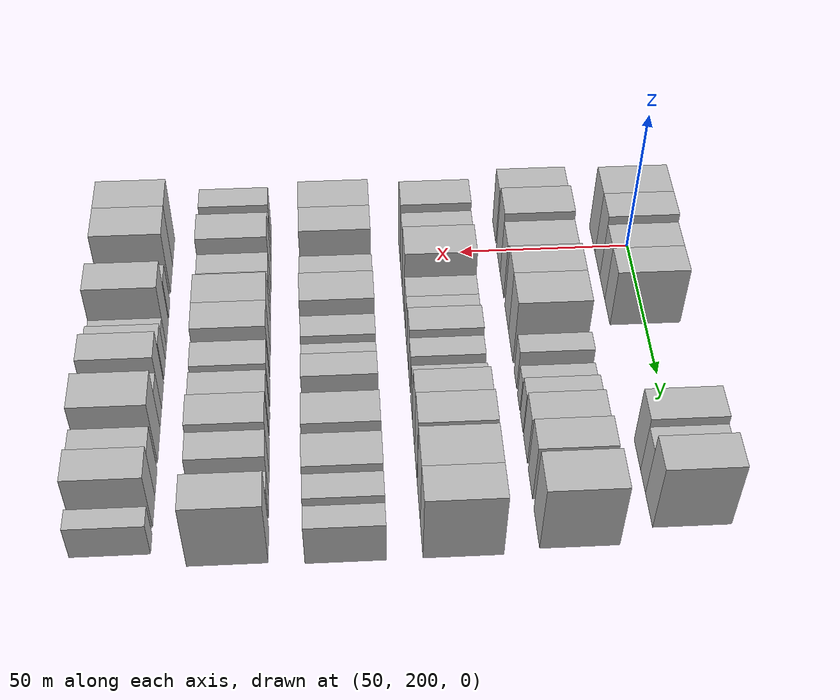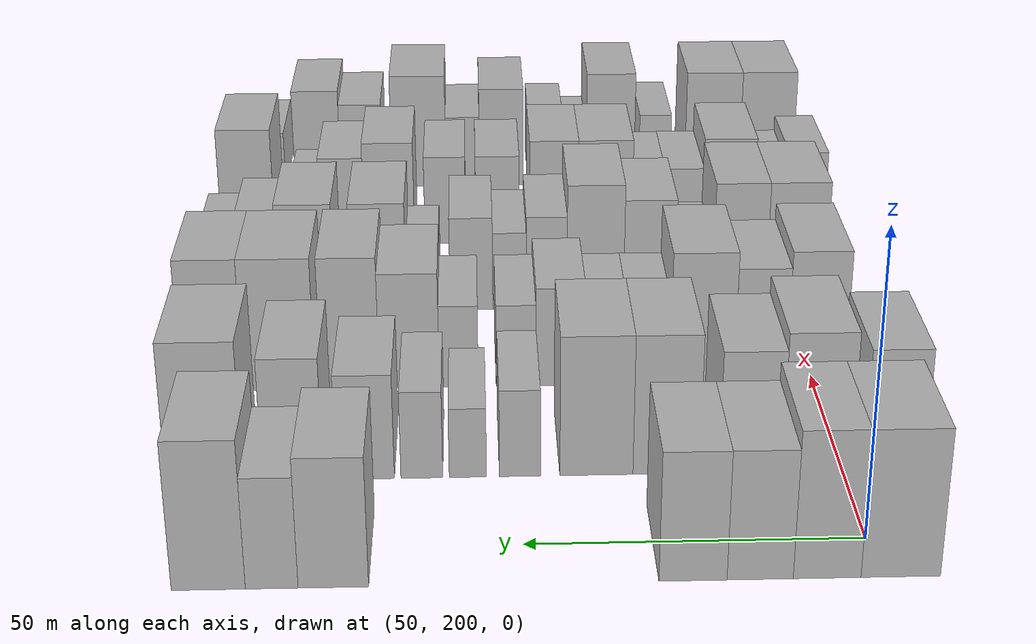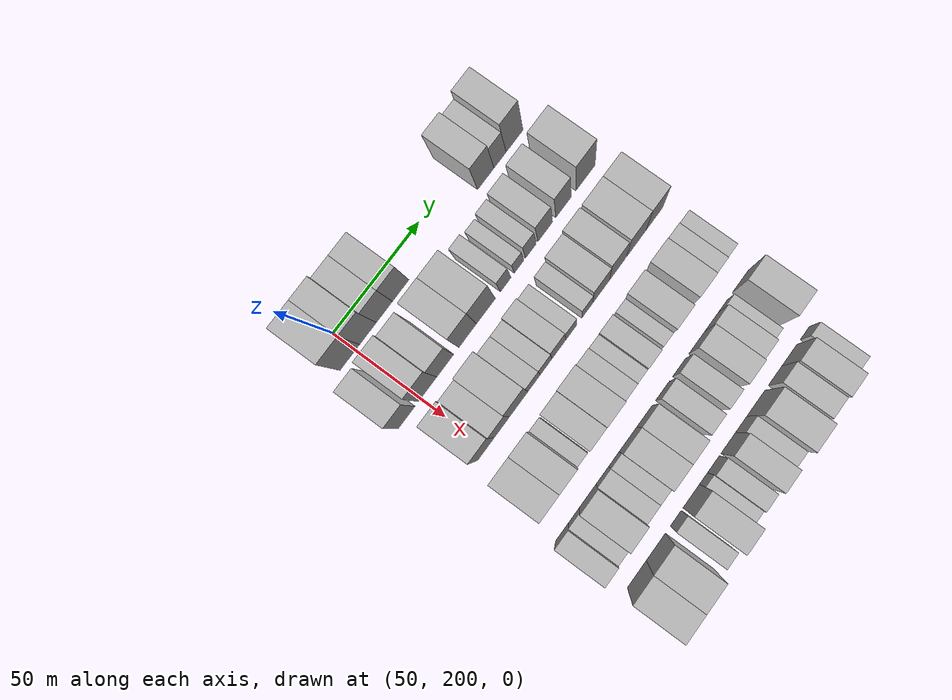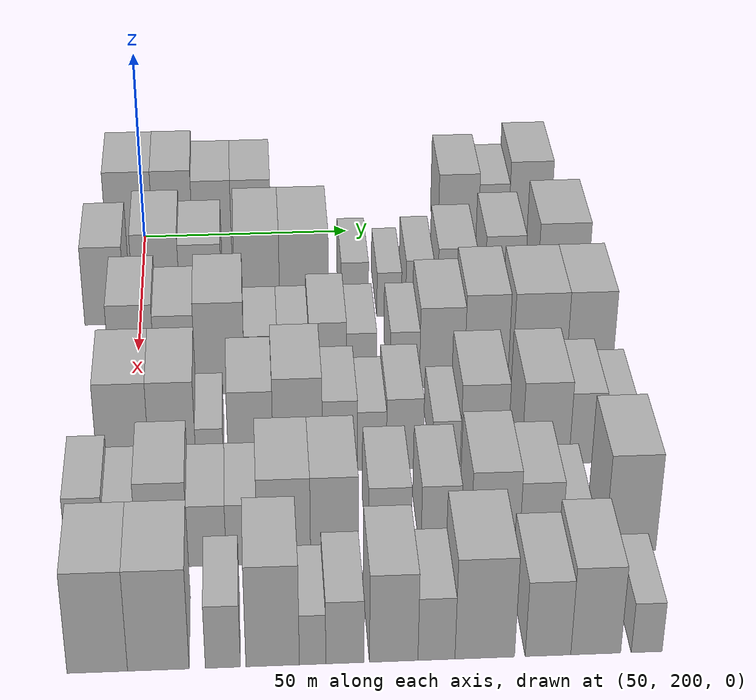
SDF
<sdf version="1.6">
 <world name="default">
  <model name="building_82">
   <static>1</static>
   <pose>50.0000 196.8557 0 0.000000 0.000000 0.000000</pose>
   <link name="link">
    <pose>0 0 12.00 0 0 0</pose>
    <collision name="collision"><geometry><box><size>20.0000 11.3411 24.0000</size></box></geometry></collision>
    <visual name="visual">
     <cast_shadows>0</cast_shadows>
     <geometry><box><size>20.0000 11.3411 24.0000</size></box></geometry>
     <material>
      <script>
       <uri>model://HANNAS_wall/materials/scripts</uri>
       <uri>model://HANNAS_wall/materials/textures</uri>
       <name>vrc/HANNAS_wall</name>
      </script>
     </material>
    </visual>
   </link>
  </model>
  <model name="building_83">
   <static>1</static>
   <pose>50.0000 207.3390 0 0.000000 0.000000 0.000000</pose>
   <link name="link">
    <pose>0 0 12.00 0 0 0</pose>
    <collision name="collision"><geometry><box><size>20.0000 9.6255 24.0000</size></box></geometry></collision>
    <visual name="visual">
     <cast_shadows>0</cast_shadows>
     <geometry><box><size>20.0000 9.6255 24.0000</size></box></geometry>
     <material>
      <script>
       <uri>model://HANNAS_wall/materials/scripts</uri>
       <uri>model://HANNAS_wall/materials/textures</uri>
       <name>vrc/HANNAS_wall</name>
      </script>
     </material>
    </visual>
   </link>
  </model>
  <model name="building_84">
   <static>1</static>
   <pose>50.0000 216.8440 0 0.000000 0.000000 0.000000</pose>
   <link name="link">
    <pose>0 0 10.50 0 0 0</pose>
    <collision name="collision"><geometry><box><size>20.0000 9.3846 21.0000</size></box></geometry></collision>
    <visual name="visual">
     <cast_shadows>0</cast_shadows>
     <geometry><box><size>20.0000 9.3846 21.0000</size></box></geometry>
     <material>
      <script>
       <uri>model://HANNAS_wall/materials/scripts</uri>
       <uri>model://HANNAS_wall/materials/textures</uri>
       <name>vrc/HANNAS_wall</name>
      </script>
     </material>
    </visual>
   </link>
  </model>
  <model name="building_85">
   <static>1</static>
   <pose>50.0000 226.3580 0 0.000000 0.000000 0.000000</pose>
   <link name="link">
    <pose>0 0 10.50 0 0 0</pose>
    <collision name="collision"><geometry><box><size>20.0000 9.6435 21.0000</size></box></geometry></collision>
    <visual name="visual">
     <cast_shadows>0</cast_shadows>
     <geometry><box><size>20.0000 9.6435 21.0000</size></box></geometry>
     <material>
      <script>
       <uri>model://HANNAS_wall/materials/scripts</uri>
       <uri>model://HANNAS_wall/materials/textures</uri>
       <name>vrc/HANNAS_wall</name>
      </script>
     </material>
    </visual>
   </link>
  </model>
  <model name="building_86">
   <static>1</static>
   <pose>50.0000 276.9964 0 0.000000 0.000000 0.000000</pose>
   <link name="link">
    <pose>0 0 10.50 0 0 0</pose>
    <collision name="collision"><geometry><box><size>20.0000 9.8777 21.0000</size></box></geometry></collision>
    <visual name="visual">
     <cast_shadows>0</cast_shadows>
     <geometry><box><size>20.0000 9.8777 21.0000</size></box></geometry>
     <material>
      <script>
       <uri>model://HANNAS_wall/materials/scripts</uri>
       <uri>model://HANNAS_wall/materials/textures</uri>
       <name>vrc/HANNAS_wall</name>
      </script>
     </material>
    </visual>
   </link>
  </model>
  <model name="building_87">
   <static>1</static>
   <pose>50.0000 285.6185 0 0.000000 0.000000 0.000000</pose>
   <link name="link">
    <pose>0 0 9.00 0 0 0</pose>
    <collision name="collision"><geometry><box><size>20.0000 7.3665 18.0000</size></box></geometry></collision>
    <visual name="visual">
     <cast_shadows>0</cast_shadows>
     <geometry><box><size>20.0000 7.3665 18.0000</size></box></geometry>
     <material>
      <script>
       <uri>model://HANNAS_wall/materials/scripts</uri>
       <uri>model://HANNAS_wall/materials/textures</uri>
       <name>vrc/HANNAS_wall</name>
      </script>
     </material>
    </visual>
   </link>
  </model>
  <model name="building_88">
   <static>1</static>
   <pose>50.0000 294.4749 0 0.000000 0.000000 0.000000</pose>
   <link name="link">
    <pose>0 0 12.00 0 0 0</pose>
    <collision name="collision"><geometry><box><size>20.0000 10.3462 24.0000</size></box></geometry></collision>
    <visual name="visual">
     <cast_shadows>0</cast_shadows>
     <geometry><box><size>20.0000 10.3462 24.0000</size></box></geometry>
     <material>
      <script>
       <uri>model://HANNAS_wall/materials/scripts</uri>
       <uri>model://HANNAS_wall/materials/textures</uri>
       <name>vrc/HANNAS_wall</name>
      </script>
     </material>
    </visual>
   </link>
  </model>
  <model name="building_189">
   <static>1</static>
   <pose>79.0000 191.9777 0 0.000000 0.000000 0.000000</pose>
   <link name="link">
    <pose>0 0 10.50 0 0 0</pose>
    <collision name="collision"><geometry><box><size>20.0000 9.4696 21.0000</size></box></geometry></collision>
    <visual name="visual">
     <cast_shadows>0</cast_shadows>
     <geometry><box><size>20.0000 9.4696 21.0000</size></box></geometry>
     <material>
      <script>
       <uri>model://HANNAS_wall/materials/scripts</uri>
       <uri>model://HANNAS_wall/materials/textures</uri>
       <name>vrc/HANNAS_wall</name>
      </script>
     </material>
    </visual>
   </link>
  </model>
  <model name="building_190">
   <static>1</static>
   <pose>79.0000 204.0868 0 0.000000 0.000000 0.000000</pose>
   <link name="link">
    <pose>0 0 12.00 0 0 0</pose>
    <collision name="collision"><geometry><box><size>20.0000 10.7487 24.0000</size></box></geometry></collision>
    <visual name="visual">
     <cast_shadows>0</cast_shadows>
     <geometry><box><size>20.0000 10.7487 24.0000</size></box></geometry>
     <material>
      <script>
       <uri>model://HANNAS_wall/materials/scripts</uri>
       <uri>model://HANNAS_wall/materials/textures</uri>
       <name>vrc/HANNAS_wall</name>
      </script>
     </material>
    </visual>
   </link>
  </model>
  <model name="building_191">
   <static>1</static>
   <pose>79.0000 214.3455 0 0.000000 0.000000 0.000000</pose>
   <link name="link">
    <pose>0 0 10.50 0 0 0</pose>
    <collision name="collision"><geometry><box><size>20.0000 9.7688 21.0000</size></box></geometry></collision>
    <visual name="visual">
     <cast_shadows>0</cast_shadows>
     <geometry><box><size>20.0000 9.7688 21.0000</size></box></geometry>
     <material>
      <script>
       <uri>model://HANNAS_wall/materials/scripts</uri>
       <uri>model://HANNAS_wall/materials/textures</uri>
       <name>vrc/HANNAS_wall</name>
      </script>
     </material>
    </visual>
   </link>
  </model>
  <model name="building_192">
   <static>1</static>
   <pose>79.0000 227.3955 0 0.000000 0.000000 0.000000</pose>
   <link name="link">
    <pose>0 0 12.00 0 0 0</pose>
    <collision name="collision"><geometry><box><size>20.0000 10.3311 24.0000</size></box></geometry></collision>
    <visual name="visual">
     <cast_shadows>0</cast_shadows>
     <geometry><box><size>20.0000 10.3311 24.0000</size></box></geometry>
     <material>
      <script>
       <uri>model://HANNAS_wall/materials/scripts</uri>
       <uri>model://HANNAS_wall/materials/textures</uri>
       <name>vrc/HANNAS_wall</name>
      </script>
     </material>
    </visual>
   </link>
  </model>
  <model name="building_193">
   <static>1</static>
   <pose>79.0000 238.2052 0 0.000000 0.000000 0.000000</pose>
   <link name="link">
    <pose>0 0 12.00 0 0 0</pose>
    <collision name="collision"><geometry><box><size>20.0000 11.2883 24.0000</size></box></geometry></collision>
    <visual name="visual">
     <cast_shadows>0</cast_shadows>
     <geometry><box><size>20.0000 11.2883 24.0000</size></box></geometry>
     <material>
      <script>
       <uri>model://HANNAS_wall/materials/scripts</uri>
       <uri>model://HANNAS_wall/materials/textures</uri>
       <name>vrc/HANNAS_wall</name>
      </script>
     </material>
    </visual>
   </link>
  </model>
  <model name="building_194">
   <static>1</static>
   <pose>79.0000 250.0096 0 0.000000 0.000000 0.000000</pose>
   <link name="link">
    <pose>0 0 7.50 0 0 0</pose>
    <collision name="collision"><geometry><box><size>20.0000 6.3204 15.0000</size></box></geometry></collision>
    <visual name="visual">
     <cast_shadows>0</cast_shadows>
     <geometry><box><size>20.0000 6.3204 15.0000</size></box></geometry>
     <material>
      <script>
       <uri>model://HANNAS_wall/materials/scripts</uri>
       <uri>model://HANNAS_wall/materials/textures</uri>
       <name>vrc/HANNAS_wall</name>
      </script>
     </material>
    </visual>
   </link>
  </model>
  <model name="building_195">
   <static>1</static>
   <pose>79.0000 258.0304 0 0.000000 0.000000 0.000000</pose>
   <link name="link">
    <pose>0 0 6.00 0 0 0</pose>
    <collision name="collision"><geometry><box><size>20.0000 5.7213 12.0000</size></box></geometry></collision>
    <visual name="visual">
     <cast_shadows>0</cast_shadows>
     <geometry><box><size>20.0000 5.7213 12.0000</size></box></geometry>
     <material>
      <script>
       <uri>model://HANNAS_wall/materials/scripts</uri>
       <uri>model://HANNAS_wall/materials/textures</uri>
       <name>vrc/HANNAS_wall</name>
      </script>
     </material>
    </visual>
   </link>
  </model>
  <model name="building_196">
   <static>1</static>
   <pose>79.0000 265.1078 0 0.000000 0.000000 0.000000</pose>
   <link name="link">
    <pose>0 0 7.50 0 0 0</pose>
    <collision name="collision"><geometry><box><size>20.0000 6.4335 15.0000</size></box></geometry></collision>
    <visual name="visual">
     <cast_shadows>0</cast_shadows>
     <geometry><box><size>20.0000 6.4335 15.0000</size></box></geometry>
     <material>
      <script>
       <uri>model://HANNAS_wall/materials/scripts</uri>
       <uri>model://HANNAS_wall/materials/textures</uri>
       <name>vrc/HANNAS_wall</name>
      </script>
     </material>
    </visual>
   </link>
  </model>
  <model name="building_197">
   <static>1</static>
   <pose>79.0000 273.7913 0 0.000000 0.000000 0.000000</pose>
   <link name="link">
    <pose>0 0 9.00 0 0 0</pose>
    <collision name="collision"><geometry><box><size>20.0000 8.9334 18.0000</size></box></geometry></collision>
    <visual name="visual">
     <cast_shadows>0</cast_shadows>
     <geometry><box><size>20.0000 8.9334 18.0000</size></box></geometry>
     <material>
      <script>
       <uri>model://HANNAS_wall/materials/scripts</uri>
       <uri>model://HANNAS_wall/materials/textures</uri>
       <name>vrc/HANNAS_wall</name>
      </script>
     </material>
    </visual>
   </link>
  </model>
  <model name="building_198">
   <static>1</static>
   <pose>79.0000 284.9029 0 0.000000 0.000000 0.000000</pose>
   <link name="link">
    <pose>0 0 10.50 0 0 0</pose>
    <collision name="collision"><geometry><box><size>20.0000 9.2899 21.0000</size></box></geometry></collision>
    <visual name="visual">
     <cast_shadows>0</cast_shadows>
     <geometry><box><size>20.0000 9.2899 21.0000</size></box></geometry>
     <material>
      <script>
       <uri>model://HANNAS_wall/materials/scripts</uri>
       <uri>model://HANNAS_wall/materials/textures</uri>
       <name>vrc/HANNAS_wall</name>
      </script>
     </material>
    </visual>
   </link>
  </model>
  <model name="building_199">
   <static>1</static>
   <pose>79.0000 298.4456 0 0.000000 0.000000 0.000000</pose>
   <link name="link">
    <pose>0 0 12.00 0 0 0</pose>
    <collision name="collision"><geometry><box><size>20.0000 11.7955 24.0000</size></box></geometry></collision>
    <visual name="visual">
     <cast_shadows>0</cast_shadows>
     <geometry><box><size>20.0000 11.7955 24.0000</size></box></geometry>
     <material>
      <script>
       <uri>model://HANNAS_wall/materials/scripts</uri>
       <uri>model://HANNAS_wall/materials/textures</uri>
       <name>vrc/HANNAS_wall</name>
      </script>
     </material>
    </visual>
   </link>
  </model>
  <model name="building_308">
   <static>1</static>
   <pose>108.0000 199.4805 0 0.000000 0.000000 0.000000</pose>
   <link name="link">
    <pose>0 0 12.00 0 0 0</pose>
    <collision name="collision"><geometry><box><size>20.0000 9.8912 24.0000</size></box></geometry></collision>
    <visual name="visual">
     <cast_shadows>0</cast_shadows>
     <geometry><box><size>20.0000 9.8912 24.0000</size></box></geometry>
     <material>
      <script>
       <uri>model://HANNAS_wall/materials/scripts</uri>
       <uri>model://HANNAS_wall/materials/textures</uri>
       <name>vrc/HANNAS_wall</name>
      </script>
     </material>
    </visual>
   </link>
  </model>
  <model name="building_309">
   <static>1</static>
   <pose>108.0000 208.8298 0 0.000000 0.000000 0.000000</pose>
   <link name="link">
    <pose>0 0 10.50 0 0 0</pose>
    <collision name="collision"><geometry><box><size>20.0000 8.8075 21.0000</size></box></geometry></collision>
    <visual name="visual">
     <cast_shadows>0</cast_shadows>
     <geometry><box><size>20.0000 8.8075 21.0000</size></box></geometry>
     <material>
      <script>
       <uri>model://HANNAS_wall/materials/scripts</uri>
       <uri>model://HANNAS_wall/materials/textures</uri>
       <name>vrc/HANNAS_wall</name>
      </script>
     </material>
    </visual>
   </link>
  </model>
  <model name="building_310">
   <static>1</static>
   <pose>108.0000 218.6472 0 0.000000 0.000000 0.000000</pose>
   <link name="link">
    <pose>0 0 12.00 0 0 0</pose>
    <collision name="collision"><geometry><box><size>20.0000 10.8272 24.0000</size></box></geometry></collision>
    <visual name="visual">
     <cast_shadows>0</cast_shadows>
     <geometry><box><size>20.0000 10.8272 24.0000</size></box></geometry>
     <material>
      <script>
       <uri>model://HANNAS_wall/materials/scripts</uri>
       <uri>model://HANNAS_wall/materials/textures</uri>
       <name>vrc/HANNAS_wall</name>
      </script>
     </material>
    </visual>
   </link>
  </model>
  <model name="building_311">
   <static>1</static>
   <pose>108.0000 227.7313 0 0.000000 0.000000 0.000000</pose>
   <link name="link">
    <pose>0 0 7.50 0 0 0</pose>
    <collision name="collision"><geometry><box><size>20.0000 7.3411 15.0000</size></box></geometry></collision>
    <visual name="visual">
     <cast_shadows>0</cast_shadows>
     <geometry><box><size>20.0000 7.3411 15.0000</size></box></geometry>
     <material>
      <script>
       <uri>model://HANNAS_wall/materials/scripts</uri>
       <uri>model://HANNAS_wall/materials/textures</uri>
       <name>vrc/HANNAS_wall</name>
      </script>
     </material>
    </visual>
   </link>
  </model>
  <model name="building_312">
   <static>1</static>
   <pose>108.0000 234.8525 0 0.000000 0.000000 0.000000</pose>
   <link name="link">
    <pose>0 0 7.50 0 0 0</pose>
    <collision name="collision"><geometry><box><size>20.0000 6.9013 15.0000</size></box></geometry></collision>
    <visual name="visual">
     <cast_shadows>0</cast_shadows>
     <geometry><box><size>20.0000 6.9013 15.0000</size></box></geometry>
     <material>
      <script>
       <uri>model://HANNAS_wall/materials/scripts</uri>
       <uri>model://HANNAS_wall/materials/textures</uri>
       <name>vrc/HANNAS_wall</name>
      </script>
     </material>
    </visual>
   </link>
  </model>
  <model name="building_313">
   <static>1</static>
   <pose>108.0000 242.4236 0 0.000000 0.000000 0.000000</pose>
   <link name="link">
    <pose>0 0 9.00 0 0 0</pose>
    <collision name="collision"><geometry><box><size>20.0000 8.2410 18.0000</size></box></geometry></collision>
    <visual name="visual">
     <cast_shadows>0</cast_shadows>
     <geometry><box><size>20.0000 8.2410 18.0000</size></box></geometry>
     <material>
      <script>
       <uri>model://HANNAS_wall/materials/scripts</uri>
       <uri>model://HANNAS_wall/materials/textures</uri>
       <name>vrc/HANNAS_wall</name>
      </script>
     </material>
    </visual>
   </link>
  </model>
  <model name="building_314">
   <static>1</static>
   <pose>108.0000 249.8677 0 0.000000 0.000000 0.000000</pose>
   <link name="link">
    <pose>0 0 7.50 0 0 0</pose>
    <collision name="collision"><geometry><box><size>20.0000 6.6470 15.0000</size></box></geometry></collision>
    <visual name="visual">
     <cast_shadows>0</cast_shadows>
     <geometry><box><size>20.0000 6.6470 15.0000</size></box></geometry>
     <material>
      <script>
       <uri>model://HANNAS_wall/materials/scripts</uri>
       <uri>model://HANNAS_wall/materials/textures</uri>
       <name>vrc/HANNAS_wall</name>
      </script>
     </material>
    </visual>
   </link>
  </model>
  <model name="building_315">
   <static>1</static>
   <pose>108.0000 259.4473 0 0.000000 0.000000 0.000000</pose>
   <link name="link">
    <pose>0 0 7.50 0 0 0</pose>
    <collision name="collision"><geometry><box><size>20.0000 6.5123 15.0000</size></box></geometry></collision>
    <visual name="visual">
     <cast_shadows>0</cast_shadows>
     <geometry><box><size>20.0000 6.5123 15.0000</size></box></geometry>
     <material>
      <script>
       <uri>model://HANNAS_wall/materials/scripts</uri>
       <uri>model://HANNAS_wall/materials/textures</uri>
       <name>vrc/HANNAS_wall</name>
      </script>
     </material>
    </visual>
   </link>
  </model>
  <model name="building_316">
   <static>1</static>
   <pose>108.0000 267.6944 0 0.000000 0.000000 0.000000</pose>
   <link name="link">
    <pose>0 0 10.50 0 0 0</pose>
    <collision name="collision"><geometry><box><size>20.0000 9.9818 21.0000</size></box></geometry></collision>
    <visual name="visual">
     <cast_shadows>0</cast_shadows>
     <geometry><box><size>20.0000 9.9818 21.0000</size></box></geometry>
     <material>
      <script>
       <uri>model://HANNAS_wall/materials/scripts</uri>
       <uri>model://HANNAS_wall/materials/textures</uri>
       <name>vrc/HANNAS_wall</name>
      </script>
     </material>
    </visual>
   </link>
  </model>
  <model name="building_317">
   <static>1</static>
   <pose>108.0000 277.5447 0 0.000000 0.000000 0.000000</pose>
   <link name="link">
    <pose>0 0 12.00 0 0 0</pose>
    <collision name="collision"><geometry><box><size>20.0000 9.7189 24.0000</size></box></geometry></collision>
    <visual name="visual">
     <cast_shadows>0</cast_shadows>
     <geometry><box><size>20.0000 9.7189 24.0000</size></box></geometry>
     <material>
      <script>
       <uri>model://HANNAS_wall/materials/scripts</uri>
       <uri>model://HANNAS_wall/materials/textures</uri>
       <name>vrc/HANNAS_wall</name>
      </script>
     </material>
    </visual>
   </link>
  </model>
  <model name="building_318">
   <static>1</static>
   <pose>108.0000 289.3809 0 0.000000 0.000000 0.000000</pose>
   <link name="link">
    <pose>0 0 12.00 0 0 0</pose>
    <collision name="collision"><geometry><box><size>20.0000 11.9535 24.0000</size></box></geometry></collision>
    <visual name="visual">
     <cast_shadows>0</cast_shadows>
     <geometry><box><size>20.0000 11.9535 24.0000</size></box></geometry>
     <material>
      <script>
       <uri>model://HANNAS_wall/materials/scripts</uri>
       <uri>model://HANNAS_wall/materials/textures</uri>
       <name>vrc/HANNAS_wall</name>
      </script>
     </material>
    </visual>
   </link>
  </model>
  <model name="building_319">
   <static>1</static>
   <pose>108.0000 300.5114 0 0.000000 0.000000 0.000000</pose>
   <link name="link">
    <pose>0 0 12.00 0 0 0</pose>
    <collision name="collision"><geometry><box><size>20.0000 10.3076 24.0000</size></box></geometry></collision>
    <visual name="visual">
     <cast_shadows>0</cast_shadows>
     <geometry><box><size>20.0000 10.3076 24.0000</size></box></geometry>
     <material>
      <script>
       <uri>model://HANNAS_wall/materials/scripts</uri>
       <uri>model://HANNAS_wall/materials/textures</uri>
       <name>vrc/HANNAS_wall</name>
      </script>
     </material>
    </visual>
   </link>
  </model>
  <model name="building_421">
   <static>1</static>
   <pose>137.0000 198.4894 0 0.000000 0.000000 0.000000</pose>
   <link name="link">
    <pose>0 0 12.00 0 0 0</pose>
    <collision name="collision"><geometry><box><size>20.0000 10.7905 24.0000</size></box></geometry></collision>
    <visual name="visual">
     <cast_shadows>0</cast_shadows>
     <geometry><box><size>20.0000 10.7905 24.0000</size></box></geometry>
     <material>
      <script>
       <uri>model://HANNAS_wall/materials/scripts</uri>
       <uri>model://HANNAS_wall/materials/textures</uri>
       <name>vrc/HANNAS_wall</name>
      </script>
     </material>
    </visual>
   </link>
  </model>
  <model name="building_422">
   <static>1</static>
   <pose>137.0000 208.7386 0 0.000000 0.000000 0.000000</pose>
   <link name="link">
    <pose>0 0 12.00 0 0 0</pose>
    <collision name="collision"><geometry><box><size>20.0000 9.7080 24.0000</size></box></geometry></collision>
    <visual name="visual">
     <cast_shadows>0</cast_shadows>
     <geometry><box><size>20.0000 9.7080 24.0000</size></box></geometry>
     <material>
      <script>
       <uri>model://HANNAS_wall/materials/scripts</uri>
       <uri>model://HANNAS_wall/materials/textures</uri>
       <name>vrc/HANNAS_wall</name>
      </script>
     </material>
    </visual>
   </link>
  </model>
  <model name="building_423">
   <static>1</static>
   <pose>137.0000 216.4653 0 0.000000 0.000000 0.000000</pose>
   <link name="link">
    <pose>0 0 6.00 0 0 0</pose>
    <collision name="collision"><geometry><box><size>20.0000 5.7454 12.0000</size></box></geometry></collision>
    <visual name="visual">
     <cast_shadows>0</cast_shadows>
     <geometry><box><size>20.0000 5.7454 12.0000</size></box></geometry>
     <material>
      <script>
       <uri>model://HANNAS_wall/materials/scripts</uri>
       <uri>model://HANNAS_wall/materials/textures</uri>
       <name>vrc/HANNAS_wall</name>
      </script>
     </material>
    </visual>
   </link>
  </model>
  <model name="building_424">
   <static>1</static>
   <pose>137.0000 225.0132 0 0.000000 0.000000 0.000000</pose>
   <link name="link">
    <pose>0 0 10.50 0 0 0</pose>
    <collision name="collision"><geometry><box><size>20.0000 9.3504 21.0000</size></box></geometry></collision>
    <visual name="visual">
     <cast_shadows>0</cast_shadows>
     <geometry><box><size>20.0000 9.3504 21.0000</size></box></geometry>
     <material>
      <script>
       <uri>model://HANNAS_wall/materials/scripts</uri>
       <uri>model://HANNAS_wall/materials/textures</uri>
       <name>vrc/HANNAS_wall</name>
      </script>
     </material>
    </visual>
   </link>
  </model>
  <model name="building_425">
   <static>1</static>
   <pose>137.0000 234.8146 0 0.000000 0.000000 0.000000</pose>
   <link name="link">
    <pose>0 0 12.00 0 0 0</pose>
    <collision name="collision"><geometry><box><size>20.0000 10.2524 24.0000</size></box></geometry></collision>
    <visual name="visual">
     <cast_shadows>0</cast_shadows>
     <geometry><box><size>20.0000 10.2524 24.0000</size></box></geometry>
     <material>
      <script>
       <uri>model://HANNAS_wall/materials/scripts</uri>
       <uri>model://HANNAS_wall/materials/textures</uri>
       <name>vrc/HANNAS_wall</name>
      </script>
     </material>
    </visual>
   </link>
  </model>
  <model name="building_426">
   <static>1</static>
   <pose>137.0000 243.6116 0 0.000000 0.000000 0.000000</pose>
   <link name="link">
    <pose>0 0 9.00 0 0 0</pose>
    <collision name="collision"><geometry><box><size>20.0000 7.3416 18.0000</size></box></geometry></collision>
    <visual name="visual">
     <cast_shadows>0</cast_shadows>
     <geometry><box><size>20.0000 7.3416 18.0000</size></box></geometry>
     <material>
      <script>
       <uri>model://HANNAS_wall/materials/scripts</uri>
       <uri>model://HANNAS_wall/materials/textures</uri>
       <name>vrc/HANNAS_wall</name>
      </script>
     </material>
    </visual>
   </link>
  </model>
  <model name="building_427">
   <static>1</static>
   <pose>137.0000 250.3050 0 0.000000 0.000000 0.000000</pose>
   <link name="link">
    <pose>0 0 7.50 0 0 0</pose>
    <collision name="collision"><geometry><box><size>20.0000 6.0452 15.0000</size></box></geometry></collision>
    <visual name="visual">
     <cast_shadows>0</cast_shadows>
     <geometry><box><size>20.0000 6.0452 15.0000</size></box></geometry>
     <material>
      <script>
       <uri>model://HANNAS_wall/materials/scripts</uri>
       <uri>model://HANNAS_wall/materials/textures</uri>
       <name>vrc/HANNAS_wall</name>
      </script>
     </material>
    </visual>
   </link>
  </model>
  <model name="building_428">
   <static>1</static>
   <pose>137.0000 257.1778 0 0.000000 0.000000 0.000000</pose>
   <link name="link">
    <pose>0 0 9.00 0 0 0</pose>
    <collision name="collision"><geometry><box><size>20.0000 7.7004 18.0000</size></box></geometry></collision>
    <visual name="visual">
     <cast_shadows>0</cast_shadows>
     <geometry><box><size>20.0000 7.7004 18.0000</size></box></geometry>
     <material>
      <script>
       <uri>model://HANNAS_wall/materials/scripts</uri>
       <uri>model://HANNAS_wall/materials/textures</uri>
       <name>vrc/HANNAS_wall</name>
      </script>
     </material>
    </visual>
   </link>
  </model>
  <model name="building_429">
   <static>1</static>
   <pose>137.0000 265.9617 0 0.000000 0.000000 0.000000</pose>
   <link name="link">
    <pose>0 0 6.00 0 0 0</pose>
    <collision name="collision"><geometry><box><size>20.0000 5.8673 12.0000</size></box></geometry></collision>
    <visual name="visual">
     <cast_shadows>0</cast_shadows>
     <geometry><box><size>20.0000 5.8673 12.0000</size></box></geometry>
     <material>
      <script>
       <uri>model://HANNAS_wall/materials/scripts</uri>
       <uri>model://HANNAS_wall/materials/textures</uri>
       <name>vrc/HANNAS_wall</name>
      </script>
     </material>
    </visual>
   </link>
  </model>
  <model name="building_430">
   <static>1</static>
   <pose>137.0000 273.8799 0 0.000000 0.000000 0.000000</pose>
   <link name="link">
    <pose>0 0 10.50 0 0 0</pose>
    <collision name="collision"><geometry><box><size>20.0000 9.9691 21.0000</size></box></geometry></collision>
    <visual name="visual">
     <cast_shadows>0</cast_shadows>
     <geometry><box><size>20.0000 9.9691 21.0000</size></box></geometry>
     <material>
      <script>
       <uri>model://HANNAS_wall/materials/scripts</uri>
       <uri>model://HANNAS_wall/materials/textures</uri>
       <name>vrc/HANNAS_wall</name>
      </script>
     </material>
    </visual>
   </link>
  </model>
  <model name="building_431">
   <static>1</static>
   <pose>137.0000 286.8956 0 0.000000 0.000000 0.000000</pose>
   <link name="link">
    <pose>0 0 10.50 0 0 0</pose>
    <collision name="collision"><geometry><box><size>20.0000 10.0622 21.0000</size></box></geometry></collision>
    <visual name="visual">
     <cast_shadows>0</cast_shadows>
     <geometry><box><size>20.0000 10.0622 21.0000</size></box></geometry>
     <material>
      <script>
       <uri>model://HANNAS_wall/materials/scripts</uri>
       <uri>model://HANNAS_wall/materials/textures</uri>
       <name>vrc/HANNAS_wall</name>
      </script>
     </material>
    </visual>
   </link>
  </model>
  <model name="building_432">
   <static>1</static>
   <pose>137.0000 295.5722 0 0.000000 0.000000 0.000000</pose>
   <link name="link">
    <pose>0 0 9.00 0 0 0</pose>
    <collision name="collision"><geometry><box><size>20.0000 7.2911 18.0000</size></box></geometry></collision>
    <visual name="visual">
     <cast_shadows>0</cast_shadows>
     <geometry><box><size>20.0000 7.2911 18.0000</size></box></geometry>
     <material>
      <script>
       <uri>model://HANNAS_wall/materials/scripts</uri>
       <uri>model://HANNAS_wall/materials/textures</uri>
       <name>vrc/HANNAS_wall</name>
      </script>
     </material>
    </visual>
   </link>
  </model>
  <model name="building_433">
   <static>1</static>
   <pose>137.0000 302.5044 0 0.000000 0.000000 0.000000</pose>
   <link name="link">
    <pose>0 0 7.50 0 0 0</pose>
    <collision name="collision"><geometry><box><size>20.0000 6.5732 15.0000</size></box></geometry></collision>
    <visual name="visual">
     <cast_shadows>0</cast_shadows>
     <geometry><box><size>20.0000 6.5732 15.0000</size></box></geometry>
     <material>
      <script>
       <uri>model://HANNAS_wall/materials/scripts</uri>
       <uri>model://HANNAS_wall/materials/textures</uri>
       <name>vrc/HANNAS_wall</name>
      </script>
     </material>
    </visual>
   </link>
  </model>
  <model name="building_533">
   <static>1</static>
   <pose>166.0000 192.1871 0 0.000000 0.000000 0.000000</pose>
   <link name="link">
    <pose>0 0 9.00 0 0 0</pose>
    <collision name="collision"><geometry><box><size>20.0000 7.5550 18.0000</size></box></geometry></collision>
    <visual name="visual">
     <cast_shadows>0</cast_shadows>
     <geometry><box><size>20.0000 7.5550 18.0000</size></box></geometry>
     <material>
      <script>
       <uri>model://HANNAS_wall/materials/scripts</uri>
       <uri>model://HANNAS_wall/materials/textures</uri>
       <name>vrc/HANNAS_wall</name>
      </script>
     </material>
    </visual>
   </link>
  </model>
  <model name="building_534">
   <static>1</static>
   <pose>166.0000 199.0561 0 0.000000 0.000000 0.000000</pose>
   <link name="link">
    <pose>0 0 7.50 0 0 0</pose>
    <collision name="collision"><geometry><box><size>20.0000 6.1829 15.0000</size></box></geometry></collision>
    <visual name="visual">
     <cast_shadows>0</cast_shadows>
     <geometry><box><size>20.0000 6.1829 15.0000</size></box></geometry>
     <material>
      <script>
       <uri>model://HANNAS_wall/materials/scripts</uri>
       <uri>model://HANNAS_wall/materials/textures</uri>
       <name>vrc/HANNAS_wall</name>
      </script>
     </material>
    </visual>
   </link>
  </model>
  <model name="building_535">
   <static>1</static>
   <pose>166.0000 207.1760 0 0.000000 0.000000 0.000000</pose>
   <link name="link">
    <pose>0 0 10.50 0 0 0</pose>
    <collision name="collision"><geometry><box><size>20.0000 10.0567 21.0000</size></box></geometry></collision>
    <visual name="visual">
     <cast_shadows>0</cast_shadows>
     <geometry><box><size>20.0000 10.0567 21.0000</size></box></geometry>
     <material>
      <script>
       <uri>model://HANNAS_wall/materials/scripts</uri>
       <uri>model://HANNAS_wall/materials/textures</uri>
       <name>vrc/HANNAS_wall</name>
      </script>
     </material>
    </visual>
   </link>
  </model>
  <model name="building_536">
   <static>1</static>
   <pose>166.0000 215.9539 0 0.000000 0.000000 0.000000</pose>
   <link name="link">
    <pose>0 0 7.50 0 0 0</pose>
    <collision name="collision"><geometry><box><size>20.0000 7.4991 15.0000</size></box></geometry></collision>
    <visual name="visual">
     <cast_shadows>0</cast_shadows>
     <geometry><box><size>20.0000 7.4991 15.0000</size></box></geometry>
     <material>
      <script>
       <uri>model://HANNAS_wall/materials/scripts</uri>
       <uri>model://HANNAS_wall/materials/textures</uri>
       <name>vrc/HANNAS_wall</name>
      </script>
     </material>
    </visual>
   </link>
  </model>
  <model name="building_537">
   <static>1</static>
   <pose>166.0000 222.7936 0 0.000000 0.000000 0.000000</pose>
   <link name="link">
    <pose>0 0 7.50 0 0 0</pose>
    <collision name="collision"><geometry><box><size>20.0000 6.1802 15.0000</size></box></geometry></collision>
    <visual name="visual">
     <cast_shadows>0</cast_shadows>
     <geometry><box><size>20.0000 6.1802 15.0000</size></box></geometry>
     <material>
      <script>
       <uri>model://HANNAS_wall/materials/scripts</uri>
       <uri>model://HANNAS_wall/materials/textures</uri>
       <name>vrc/HANNAS_wall</name>
      </script>
     </material>
    </visual>
   </link>
  </model>
  <model name="building_538">
   <static>1</static>
   <pose>166.0000 231.1142 0 0.000000 0.000000 0.000000</pose>
   <link name="link">
    <pose>0 0 10.50 0 0 0</pose>
    <collision name="collision"><geometry><box><size>20.0000 10.4610 21.0000</size></box></geometry></collision>
    <visual name="visual">
     <cast_shadows>0</cast_shadows>
     <geometry><box><size>20.0000 10.4610 21.0000</size></box></geometry>
     <material>
      <script>
       <uri>model://HANNAS_wall/materials/scripts</uri>
       <uri>model://HANNAS_wall/materials/textures</uri>
       <name>vrc/HANNAS_wall</name>
      </script>
     </material>
    </visual>
   </link>
  </model>
  <model name="building_539">
   <static>1</static>
   <pose>166.0000 241.0512 0 0.000000 0.000000 0.000000</pose>
   <link name="link">
    <pose>0 0 10.50 0 0 0</pose>
    <collision name="collision"><geometry><box><size>20.0000 9.4131 21.0000</size></box></geometry></collision>
    <visual name="visual">
     <cast_shadows>0</cast_shadows>
     <geometry><box><size>20.0000 9.4131 21.0000</size></box></geometry>
     <material>
      <script>
       <uri>model://HANNAS_wall/materials/scripts</uri>
       <uri>model://HANNAS_wall/materials/textures</uri>
       <name>vrc/HANNAS_wall</name>
      </script>
     </material>
    </visual>
   </link>
  </model>
  <model name="building_540">
   <static>1</static>
   <pose>166.0000 251.9696 0 0.000000 0.000000 0.000000</pose>
   <link name="link">
    <pose>0 0 9.00 0 0 0</pose>
    <collision name="collision"><geometry><box><size>20.0000 8.4237 18.0000</size></box></geometry></collision>
    <visual name="visual">
     <cast_shadows>0</cast_shadows>
     <geometry><box><size>20.0000 8.4237 18.0000</size></box></geometry>
     <material>
      <script>
       <uri>model://HANNAS_wall/materials/scripts</uri>
       <uri>model://HANNAS_wall/materials/textures</uri>
       <name>vrc/HANNAS_wall</name>
      </script>
     </material>
    </visual>
   </link>
  </model>
  <model name="building_541">
   <static>1</static>
   <pose>166.0000 262.1102 0 0.000000 0.000000 0.000000</pose>
   <link name="link">
    <pose>0 0 9.00 0 0 0</pose>
    <collision name="collision"><geometry><box><size>20.0000 7.8574 18.0000</size></box></geometry></collision>
    <visual name="visual">
     <cast_shadows>0</cast_shadows>
     <geometry><box><size>20.0000 7.8574 18.0000</size></box></geometry>
     <material>
      <script>
       <uri>model://HANNAS_wall/materials/scripts</uri>
       <uri>model://HANNAS_wall/materials/textures</uri>
       <name>vrc/HANNAS_wall</name>
      </script>
     </material>
    </visual>
   </link>
  </model>
  <model name="building_542">
   <static>1</static>
   <pose>166.0000 272.8904 0 0.000000 0.000000 0.000000</pose>
   <link name="link">
    <pose>0 0 10.50 0 0 0</pose>
    <collision name="collision"><geometry><box><size>20.0000 9.7031 21.0000</size></box></geometry></collision>
    <visual name="visual">
     <cast_shadows>0</cast_shadows>
     <geometry><box><size>20.0000 9.7031 21.0000</size></box></geometry>
     <material>
      <script>
       <uri>model://HANNAS_wall/materials/scripts</uri>
       <uri>model://HANNAS_wall/materials/textures</uri>
       <name>vrc/HANNAS_wall</name>
      </script>
     </material>
    </visual>
   </link>
  </model>
  <model name="building_543">
   <static>1</static>
   <pose>166.0000 281.9821 0 0.000000 0.000000 0.000000</pose>
   <link name="link">
    <pose>0 0 9.00 0 0 0</pose>
    <collision name="collision"><geometry><box><size>20.0000 8.4803 18.0000</size></box></geometry></collision>
    <visual name="visual">
     <cast_shadows>0</cast_shadows>
     <geometry><box><size>20.0000 8.4803 18.0000</size></box></geometry>
     <material>
      <script>
       <uri>model://HANNAS_wall/materials/scripts</uri>
       <uri>model://HANNAS_wall/materials/textures</uri>
       <name>vrc/HANNAS_wall</name>
      </script>
     </material>
    </visual>
   </link>
  </model>
  <model name="building_544">
   <static>1</static>
   <pose>166.0000 289.0662 0 0.000000 0.000000 0.000000</pose>
   <link name="link">
    <pose>0 0 6.00 0 0 0</pose>
    <collision name="collision"><geometry><box><size>20.0000 5.6880 12.0000</size></box></geometry></collision>
    <visual name="visual">
     <cast_shadows>0</cast_shadows>
     <geometry><box><size>20.0000 5.6880 12.0000</size></box></geometry>
     <material>
      <script>
       <uri>model://HANNAS_wall/materials/scripts</uri>
       <uri>model://HANNAS_wall/materials/textures</uri>
       <name>vrc/HANNAS_wall</name>
      </script>
     </material>
    </visual>
   </link>
  </model>
  <model name="building_545">
   <static>1</static>
   <pose>166.0000 300.0262 0 0.000000 0.000000 0.000000</pose>
   <link name="link">
    <pose>0 0 12.00 0 0 0</pose>
    <collision name="collision"><geometry><box><size>20.0000 10.2320 24.0000</size></box></geometry></collision>
    <visual name="visual">
     <cast_shadows>0</cast_shadows>
     <geometry><box><size>20.0000 10.2320 24.0000</size></box></geometry>
     <material>
      <script>
       <uri>model://HANNAS_wall/materials/scripts</uri>
       <uri>model://HANNAS_wall/materials/textures</uri>
       <name>vrc/HANNAS_wall</name>
      </script>
     </material>
    </visual>
   </link>
  </model>
  <model name="building_646">
   <static>1</static>
   <pose>195.0000 195.7028 0 0.000000 0.000000 0.000000</pose>
   <link name="link">
    <pose>0 0 12.00 0 0 0</pose>
    <collision name="collision"><geometry><box><size>20.0000 11.1712 24.0000</size></box></geometry></collision>
    <visual name="visual">
     <cast_shadows>0</cast_shadows>
     <geometry><box><size>20.0000 11.1712 24.0000</size></box></geometry>
     <material>
      <script>
       <uri>model://HANNAS_wall/materials/scripts</uri>
       <uri>model://HANNAS_wall/materials/textures</uri>
       <name>vrc/HANNAS_wall</name>
      </script>
     </material>
    </visual>
   </link>
  </model>
  <model name="building_647">
   <static>1</static>
   <pose>195.0000 206.9846 0 0.000000 0.000000 0.000000</pose>
   <link name="link">
    <pose>0 0 12.00 0 0 0</pose>
    <collision name="collision"><geometry><box><size>20.0000 11.3926 24.0000</size></box></geometry></collision>
    <visual name="visual">
     <cast_shadows>0</cast_shadows>
     <geometry><box><size>20.0000 11.3926 24.0000</size></box></geometry>
     <material>
      <script>
       <uri>model://HANNAS_wall/materials/scripts</uri>
       <uri>model://HANNAS_wall/materials/textures</uri>
       <name>vrc/HANNAS_wall</name>
      </script>
     </material>
    </visual>
   </link>
  </model>
  <model name="building_648">
   <static>1</static>
   <pose>195.0000 218.9404 0 0.000000 0.000000 0.000000</pose>
   <link name="link">
    <pose>0 0 7.50 0 0 0</pose>
    <collision name="collision"><geometry><box><size>20.0000 6.5190 15.0000</size></box></geometry></collision>
    <visual name="visual">
     <cast_shadows>0</cast_shadows>
     <geometry><box><size>20.0000 6.5190 15.0000</size></box></geometry>
     <material>
      <script>
       <uri>model://HANNAS_wall/materials/scripts</uri>
       <uri>model://HANNAS_wall/materials/textures</uri>
       <name>vrc/HANNAS_wall</name>
      </script>
     </material>
    </visual>
   </link>
  </model>
  <model name="building_649">
   <static>1</static>
   <pose>195.0000 228.1618 0 0.000000 0.000000 0.000000</pose>
   <link name="link">
    <pose>0 0 12.00 0 0 0</pose>
    <collision name="collision"><geometry><box><size>20.0000 9.9238 24.0000</size></box></geometry></collision>
    <visual name="visual">
     <cast_shadows>0</cast_shadows>
     <geometry><box><size>20.0000 9.9238 24.0000</size></box></geometry>
     <material>
      <script>
       <uri>model://HANNAS_wall/materials/scripts</uri>
       <uri>model://HANNAS_wall/materials/textures</uri>
       <name>vrc/HANNAS_wall</name>
      </script>
     </material>
    </visual>
   </link>
  </model>
  <model name="building_650">
   <static>1</static>
   <pose>195.0000 235.5824 0 0.000000 0.000000 0.000000</pose>
   <link name="link">
    <pose>0 0 6.00 0 0 0</pose>
    <collision name="collision"><geometry><box><size>20.0000 4.9173 12.0000</size></box></geometry></collision>
    <visual name="visual">
     <cast_shadows>0</cast_shadows>
     <geometry><box><size>20.0000 4.9173 12.0000</size></box></geometry>
     <material>
      <script>
       <uri>model://HANNAS_wall/materials/scripts</uri>
       <uri>model://HANNAS_wall/materials/textures</uri>
       <name>vrc/HANNAS_wall</name>
      </script>
     </material>
    </visual>
   </link>
  </model>
  <model name="building_651">
   <static>1</static>
   <pose>195.0000 241.6106 0 0.000000 0.000000 0.000000</pose>
   <link name="link">
    <pose>0 0 7.50 0 0 0</pose>
    <collision name="collision"><geometry><box><size>20.0000 7.1392 15.0000</size></box></geometry></collision>
    <visual name="visual">
     <cast_shadows>0</cast_shadows>
     <geometry><box><size>20.0000 7.1392 15.0000</size></box></geometry>
     <material>
      <script>
       <uri>model://HANNAS_wall/materials/scripts</uri>
       <uri>model://HANNAS_wall/materials/textures</uri>
       <name>vrc/HANNAS_wall</name>
      </script>
     </material>
    </visual>
   </link>
  </model>
  <model name="building_652">
   <static>1</static>
   <pose>195.0000 250.7085 0 0.000000 0.000000 0.000000</pose>
   <link name="link">
    <pose>0 0 10.50 0 0 0</pose>
    <collision name="collision"><geometry><box><size>20.0000 9.0564 21.0000</size></box></geometry></collision>
    <visual name="visual">
     <cast_shadows>0</cast_shadows>
     <geometry><box><size>20.0000 9.0564 21.0000</size></box></geometry>
     <material>
      <script>
       <uri>model://HANNAS_wall/materials/scripts</uri>
       <uri>model://HANNAS_wall/materials/textures</uri>
       <name>vrc/HANNAS_wall</name>
      </script>
     </material>
    </visual>
   </link>
  </model>
  <model name="building_653">
   <static>1</static>
   <pose>195.0000 258.7010 0 0.000000 0.000000 0.000000</pose>
   <link name="link">
    <pose>0 0 7.50 0 0 0</pose>
    <collision name="collision"><geometry><box><size>20.0000 6.9286 15.0000</size></box></geometry></collision>
    <visual name="visual">
     <cast_shadows>0</cast_shadows>
     <geometry><box><size>20.0000 6.9286 15.0000</size></box></geometry>
     <material>
      <script>
       <uri>model://HANNAS_wall/materials/scripts</uri>
       <uri>model://HANNAS_wall/materials/textures</uri>
       <name>vrc/HANNAS_wall</name>
      </script>
     </material>
    </visual>
   </link>
  </model>
  <model name="building_654">
   <static>1</static>
   <pose>195.0000 267.7523 0 0.000000 0.000000 0.000000</pose>
   <link name="link">
    <pose>0 0 12.00 0 0 0</pose>
    <collision name="collision"><geometry><box><size>20.0000 11.1740 24.0000</size></box></geometry></collision>
    <visual name="visual">
     <cast_shadows>0</cast_shadows>
     <geometry><box><size>20.0000 11.1740 24.0000</size></box></geometry>
     <material>
      <script>
       <uri>model://HANNAS_wall/materials/scripts</uri>
       <uri>model://HANNAS_wall/materials/textures</uri>
       <name>vrc/HANNAS_wall</name>
      </script>
     </material>
    </visual>
   </link>
  </model>
  <model name="building_655">
   <static>1</static>
   <pose>195.0000 279.6247 0 0.000000 0.000000 0.000000</pose>
   <link name="link">
    <pose>0 0 9.00 0 0 0</pose>
    <collision name="collision"><geometry><box><size>20.0000 8.5708 18.0000</size></box></geometry></collision>
    <visual name="visual">
     <cast_shadows>0</cast_shadows>
     <geometry><box><size>20.0000 8.5708 18.0000</size></box></geometry>
     <material>
      <script>
       <uri>model://HANNAS_wall/materials/scripts</uri>
       <uri>model://HANNAS_wall/materials/textures</uri>
       <name>vrc/HANNAS_wall</name>
      </script>
     </material>
    </visual>
   </link>
  </model>
  <model name="building_656">
   <static>1</static>
   <pose>195.0000 288.6092 0 0.000000 0.000000 0.000000</pose>
   <link name="link">
    <pose>0 0 10.50 0 0 0</pose>
    <collision name="collision"><geometry><box><size>20.0000 9.3981 21.0000</size></box></geometry></collision>
    <visual name="visual">
     <cast_shadows>0</cast_shadows>
     <geometry><box><size>20.0000 9.3981 21.0000</size></box></geometry>
     <material>
      <script>
       <uri>model://HANNAS_wall/materials/scripts</uri>
       <uri>model://HANNAS_wall/materials/textures</uri>
       <name>vrc/HANNAS_wall</name>
      </script>
     </material>
    </visual>
   </link>
  </model>
  <model name="building_657">
   <static>1</static>
   <pose>195.0000 298.2193 0 0.000000 0.000000 0.000000</pose>
   <link name="link">
    <pose>0 0 6.00 0 0 0</pose>
    <collision name="collision"><geometry><box><size>20.0000 5.8222 12.0000</size></box></geometry></collision>
    <visual name="visual">
     <cast_shadows>0</cast_shadows>
     <geometry><box><size>20.0000 5.8222 12.0000</size></box></geometry>
     <material>
      <script>
       <uri>model://HANNAS_wall/materials/scripts</uri>
       <uri>model://HANNAS_wall/materials/textures</uri>
       <name>vrc/HANNAS_wall</name>
      </script>
     </material>
    </visual>
   </link>
  </model>
 </world>
</sdf>
